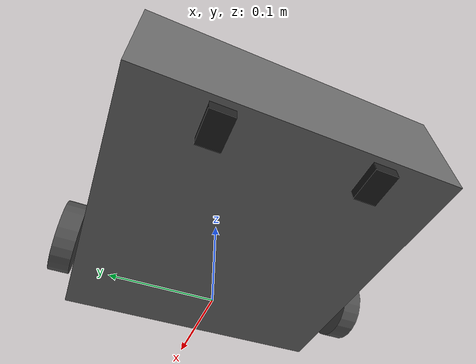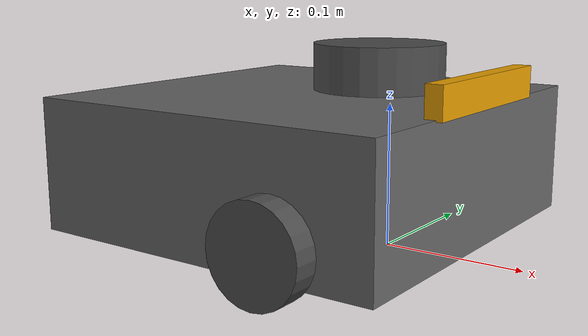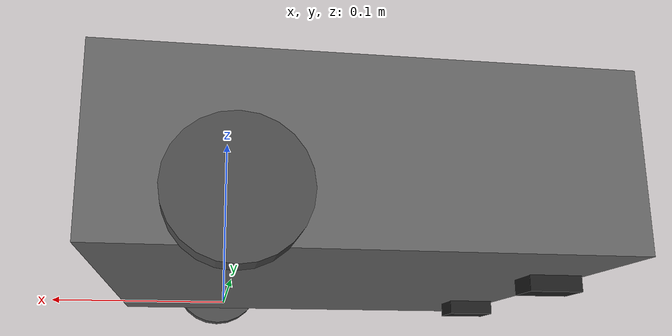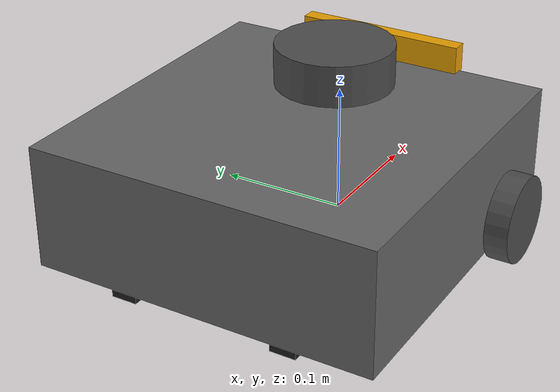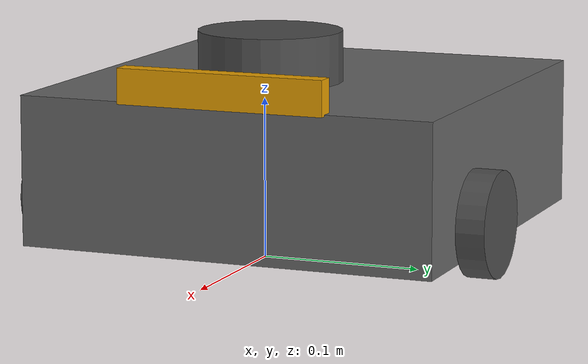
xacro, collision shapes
<?xml version="1.0" ?>
<robot name="turtlebot3_waffle" xmlns:xacro="http://ros.org/wiki/xacro">
  <xacro:include filename="$(find turtlebot3_description)/urdf/common_properties.xacro"/>
  <xacro:include filename="$(find turtlebot3_description)/urdf/turtlebot3_waffle.gazebo.xacro"/>

  <xacro:property name="r200_cam_rgb_px" value="0.005"/>
  <xacro:property name="r200_cam_rgb_py" value="0.018"/>
  <xacro:property name="r200_cam_rgb_pz" value="0.013"/>
  <xacro:property name="r200_cam_depth_offset" value="0.01"/>

  <link name="base_footprint"/>

  <joint name="base_joint" type="fixed">
    <parent link="base_footprint"/>
    <child link="base_link" />
    <origin xyz="0 0 0.010" rpy="0 0 0"/>
  </joint>

  <link name="base_link">
    <visual>
      <origin xyz="-0.064 0 0.0" rpy="0 0 0"/>
      <geometry>
        <mesh filename="package://turtlebot3_description/meshes/bases/waffle_base_naked.stl" scale="0.001 0.001 0.001"/>
      </geometry>
      <material name="light_black"/>
    </visual>

    <collision>
      <origin xyz="-0.064 0 0.047" rpy="0 0 0"/>
      <geometry>
        <box size="0.266 0.266 0.094"/>
      </geometry>
    </collision>

    <inertial>
      <origin xyz="0 0 0" rpy="0 0 0"/>
      <mass value="1.3729096e+00"/>
      <inertia ixx="8.7002718e-03" ixy="-4.7576583e-05" ixz="1.1160499e-04"
               iyy="8.6195418e-03" iyz="-3.5422299e-06"
               izz="1.4612727e-02" />
    </inertial>
  </link>

  <joint name="wheel_left_joint" type="continuous">
    <parent link="base_link"/>
    <child link="wheel_left_link"/>
    <origin xyz="0.0 0.144 0.023" rpy="-1.57 0 0"/>
    <axis xyz="0 0 1"/>
  </joint>

  <link name="wheel_left_link">
    <visual>
      <origin xyz="0 0 0" rpy="1.57 0 0"/>
      <geometry>
        <mesh filename="package://turtlebot3_description/meshes/wheels/left_tire.stl" scale="0.001 0.001 0.001"/>
      </geometry>
      <material name="dark"/>
    </visual>

    <collision>
      <origin xyz="0 0.001 0" rpy="0 0 0"/>
      <geometry>
        <cylinder length="0.018" radius="0.033"/>
      </geometry>
    </collision>

    <inertial>
      <origin xyz="0 0 0" />
      <mass value="2.8498940e-02" />
      <inertia ixx="1.1175580e-05" ixy="-4.2369783e-11" ixz="-5.9381719e-09"
               iyy="1.1192413e-05" iyz="-1.4400107e-11"
               izz="2.0712558e-05" />
      </inertial>
  </link>

  <joint name="wheel_right_joint" type="continuous">
    <parent link="base_link"/>
    <child link="wheel_right_link"/>
    <origin xyz="0.0 -0.144 0.023" rpy="-1.57 0 0"/>
    <axis xyz="0 0 1"/>
  </joint>

  <link name="wheel_right_link">
    <visual>
      <origin xyz="0 0 0" rpy="1.57 0 0"/>
      <geometry>
        <mesh filename="package://turtlebot3_description/meshes/wheels/right_tire.stl" scale="0.001 0.001 0.001"/>
      </geometry>
      <material name="dark"/>
    </visual>

    <collision>
      <origin xyz="0 0.001 0" rpy="0 0 0"/>
      <geometry>
        <cylinder length="0.018" radius="0.033"/>
      </geometry>
    </collision>

    <inertial>
      <origin xyz="0 0 0" />
      <mass value="2.8498940e-02" />
      <inertia ixx="1.1175580e-05" ixy="-4.2369783e-11" ixz="-5.9381719e-09"
               iyy="1.1192413e-05" iyz="-1.4400107e-11"
               izz="2.0712558e-05" />
      </inertial>
  </link>

  <joint name="caster_back_right_joint" type="fixed">
    <parent link="base_link"/>
    <child link="caster_back_right_link"/>
    <origin xyz="-0.177 -0.064 -0.004" rpy="-1.57 0 0"/>
  </joint>

  <link name="caster_back_right_link">
    <collision>
      <origin xyz="0 0.001 0" rpy="0 0 0"/>
      <geometry>
        <box size="0.030 0.009 0.020"/>
      </geometry>
    </collision>

    <inertial>
      <origin xyz="0 0 0" />
      <mass value="0.005" />
      <inertia ixx="0.001" ixy="0.0" ixz="0.0"
               iyy="0.001" iyz="0.0"
               izz="0.001" />
    </inertial>
  </link>

  <joint name="caster_back_left_joint" type="fixed">
    <parent link="base_link"/>
    <child link="caster_back_left_link"/>
    <origin xyz="-0.177 0.064 -0.004" rpy="-1.57 0 0"/>
  </joint>

  <link name="caster_back_left_link">
    <collision>
      <origin xyz="0 0.001 0" rpy="0 0 0"/>
      <geometry>
        <box size="0.030 0.009 0.020"/>
      </geometry>
    </collision>

    <inertial>
      <origin xyz="0 0 0" />
      <mass value="0.005" />
      <inertia ixx="0.001" ixy="0.0" ixz="0.0"
               iyy="0.001" iyz="0.0"
               izz="0.001" />
    </inertial>
  </link>

  <joint name="imu_joint" type="fixed">
    <parent link="base_link"/>
    <child link="imu_link"/>
    <origin xyz="0.0 0 0.068" rpy="0 0 0"/>
  </joint>

  <link name="imu_link"/>

  <joint name="scan_joint" type="fixed">
    <parent link="base_link"/>
    <child link="base_scan"/>
    <origin xyz="-0.024 0 0.122" rpy="0 0 0"/>
  </joint>

  <link name="base_scan">
    <visual>
      <origin xyz="0 0 0.0" rpy="0 0 0"/>
      <geometry>
        <mesh filename="package://turtlebot3_description/meshes/sensors/lds.stl" scale="0.001 0.001 0.001"/>
      </geometry>
      <material name="dark"/>
    </visual>

    <collision>
      <origin xyz="0.015 0 -0.0065" rpy="0 0 0"/>
      <geometry>
        <cylinder length="0.0315" radius="0.045"/>
      </geometry>
    </collision>

    <inertial>
      <mass value="0.114" />
      <origin xyz="0 0 0" />
      <inertia ixx="0.001" ixy="0.0" ixz="0.0"
               iyy="0.001" iyz="0.0"
               izz="0.001" />
    </inertial>
  </link>

  <joint name="camera_joint" type="fixed">
    <origin xyz="0.064 -0.065 0.094" rpy="0 0 0"/>
    <parent link="base_link"/>
    <child link="camera_link"/>
  </joint>

  <link name="camera_link">
    <visual>
     <origin xyz="0 0 0" rpy="1.57 0 1.57"/>
      <geometry>
       <mesh filename="package://turtlebot3_description/meshes/sensors/r200.dae" />
      </geometry>
    </visual>
    <collision>
      <origin xyz="0.003 0.065 0.010" rpy="0 0 0"/>
      <geometry>
        <box size="0.012 0.132 0.022"/>
      </geometry>
    </collision>

    <!-- This inertial field needs doesn't contain reliable data!! -->
  </link>

  <joint name="camera_rgb_joint" type="fixed">
    <origin xyz="${r200_cam_rgb_px} ${r200_cam_rgb_py} ${r200_cam_rgb_pz}" rpy="0 0 0"/>
    <parent link="camera_link"/>
    <child link="camera_rgb_frame"/>
  </joint>
  <link name="camera_rgb_frame"/>

  <joint name="camera_rgb_optical_joint" type="fixed">
    <origin xyz="0 0 0" rpy="-1.57 0 -1.57"/>
    <parent link="camera_rgb_frame"/>
    <child link="camera_rgb_optical_frame"/>
  </joint>
  <link name="camera_rgb_optical_frame"/>

  <joint name="camera_depth_joint" type="fixed">
    <origin xyz="${r200_cam_rgb_px} ${r200_cam_rgb_py + r200_cam_depth_offset} ${r200_cam_rgb_pz}" rpy="0 0 0"/>
    <parent link="camera_link"/>
    <child link="camera_depth_frame"/>
  </joint>
  <link name="camera_depth_frame"/>

  <joint name="camera_depth_optical_joint" type="fixed">
    <origin xyz="0 0 0" rpy="-1.57 0 -1.57"/>
    <parent link="camera_depth_frame"/>
    <child link="camera_depth_optical_frame"/>
  </joint>
  <link name="camera_depth_optical_frame"/>

</robot>

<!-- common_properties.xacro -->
<robot name="xacro_properties" xmlns:xacro="http://ros.org/wiki/xacro">

  <!-- Init colour -->
  <material name="black">
      <color rgba="0.0 0.0 0.0 1.0"/>
  </material>

  <material name="dark">
    <color rgba="0.3 0.3 0.3 1.0"/>
  </material>
  <material name="light_black">
    <color rgba="0.4 0.4 0.4 1.0"/>
  </material>

  <material name="blue">
    <color rgba="0.0 0.0 0.8 1.0"/>
  </material>

  <material name="green">
    <color rgba="0.0 0.8 0.0 1.0"/>
  </material>

  <material name="grey">
    <color rgba="0.5 0.5 0.5 1.0"/>
  </material>

  <material name="light_grey">
    <color rgba="${211/255} ${211/255} ${211/255} 1.0"/>
  </material>

  <material name="orange">
    <color rgba="${255/255} ${108/255} ${10/255} 1.0"/>
  </material>

  <material name="brown">
    <color rgba="${222/255} ${207/255} ${195/255} 1.0"/>
  </material>

  <material name="red">
    <color rgba="0.8 0.0 0.0 1.0"/>
  </material>

  <material name="white">
    <color rgba="1.0 1.0 1.0 1.0"/>
  </material>
</robot>
